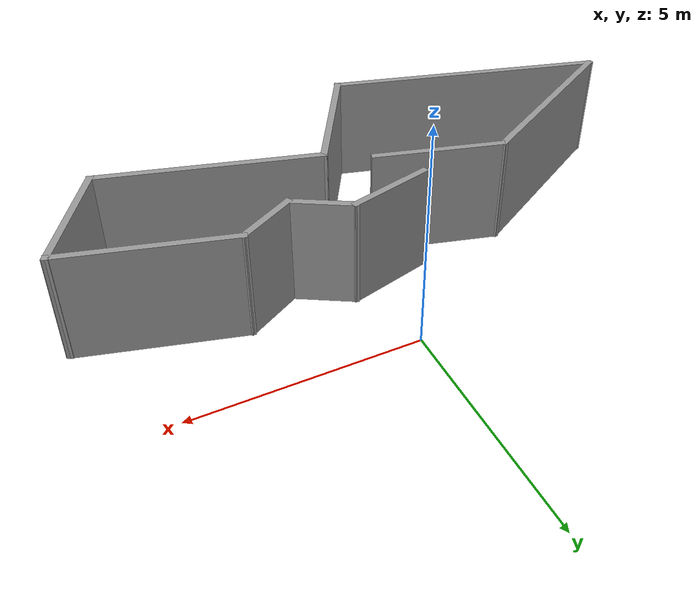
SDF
<?xml version='1.0'?>
<sdf version='1.7'>
  <model name='test01'>
    <pose>-0.372421 -3.20916 0 0 -0 0</pose>
    <link name='Wall_0'>
      <collision name='Wall_0_Collision'>
        <geometry>
          <box>
            <size>3 0.15 2.5</size>
          </box>
        </geometry>
        <pose>0 0 1.25 0 -0 0</pose>
      </collision>
      <visual name='Wall_0_Visual'>
        <pose>0 0 1.25 0 -0 0</pose>
        <geometry>
          <box>
            <size>3 0.15 2.5</size>
          </box>
        </geometry>
        <material>
          <script>
            <uri>file://media/materials/scripts/gazebo.material</uri>
            <name>Gazebo/Grey</name>
          </script>
          <ambient>1 1 1 1</ambient>
        </material>
        <meta>
          <layer>0</layer>
        </meta>
      </visual>
      <pose>-1.47402 0.467977 0 0 -0 2.87979</pose>
    </link>
    <link name='Wall_1'>
      <collision name='Wall_1_Collision'>
        <geometry>
          <box>
            <size>4.75 0.15 2.5</size>
          </box>
        </geometry>
        <pose>0 0 1.25 0 -0 0</pose>
      </collision>
      <visual name='Wall_1_Visual'>
        <pose>0 0 1.25 0 -0 0</pose>
        <geometry>
          <box>
            <size>4.75 0.15 2.5</size>
          </box>
        </geometry>
        <material>
          <script>
            <uri>file://media/materials/scripts/gazebo.material</uri>
            <name>Gazebo/Grey</name>
          </script>
          <ambient>1 1 1 1</ambient>
        </material>
        <meta>
          <layer>0</layer>
        </meta>
      </visual>
      <pose>-4.84233 -0.313206 0 0 -0 -2.61799</pose>
    </link>
    <link name='Wall_2'>
      <collision name='Wall_2_Collision'>
        <geometry>
          <box>
            <size>6.5 0.15 2.5</size>
          </box>
        </geometry>
        <pose>0 0 1.25 0 -0 0</pose>
      </collision>
      <visual name='Wall_2_Visual'>
        <pose>0 0 1.25 0 -0 0</pose>
        <geometry>
          <box>
            <size>6.5 0.15 2.5</size>
          </box>
        </geometry>
        <material>
          <script>
            <uri>file://media/materials/scripts/gazebo.material</uri>
            <name>Gazebo/Grey</name>
          </script>
          <ambient>1 1 1 1</ambient>
        </material>
        <meta>
          <layer>0</layer>
        </meta>
      </visual>
      <pose>-3.76737 -2.28496 0 0 -0 -0.261799</pose>
    </link>
    <link name='Wall_3'>
      <collision name='Wall_3_Collision'>
        <geometry>
          <box>
            <size>3.25 0.15 2.5</size>
          </box>
        </geometry>
        <pose>0 0 1.25 0 -0 0</pose>
      </collision>
      <visual name='Wall_3_Visual'>
        <pose>0 0 1.25 0 -0 0</pose>
        <geometry>
          <box>
            <size>3.25 0.15 2.5</size>
          </box>
        </geometry>
        <material>
          <script>
            <uri>file://media/materials/scripts/gazebo.material</uri>
            <name>Gazebo/Grey</name>
          </script>
          <ambient>1 1 1 1</ambient>
        </material>
        <meta>
          <layer>0</layer>
        </meta>
      </visual>
      <pose>0.074445 -1.76437 0 0 -0 1.0472</pose>
    </link>
    <link name='Wall_4'>
      <collision name='Wall_4_Collision'>
        <geometry>
          <box>
            <size>5 0.15 2.5</size>
          </box>
        </geometry>
        <pose>0 0 1.25 0 -0 0</pose>
      </collision>
      <visual name='Wall_4_Visual'>
        <pose>0 0 1.25 0 -0 0</pose>
        <geometry>
          <box>
            <size>5 0.15 2.5</size>
          </box>
        </geometry>
        <material>
          <script>
            <uri>file://media/materials/scripts/gazebo.material</uri>
            <name>Gazebo/Grey</name>
          </script>
          <ambient>1 1 1 1</ambient>
        </material>
        <meta>
          <layer>0</layer>
        </meta>
      </visual>
      <pose>3.19182 -1.04966 0 0 -0 -0.261799</pose>
    </link>
    <link name='Wall_5'>
      <collision name='Wall_5_Collision'>
        <geometry>
          <box>
            <size>2.75 0.15 2.5</size>
          </box>
        </geometry>
        <pose>0 0 1.25 0 -0 0</pose>
      </collision>
      <visual name='Wall_5_Visual'>
        <pose>0 0 1.25 0 -0 0</pose>
        <geometry>
          <box>
            <size>2.75 0.15 2.5</size>
          </box>
        </geometry>
        <material>
          <script>
            <uri>file://media/materials/scripts/gazebo.material</uri>
            <name>Gazebo/Grey</name>
          </script>
          <ambient>1 1 1 1</ambient>
        </material>
        <meta>
          <layer>0</layer>
        </meta>
      </visual>
      <pose>6.18419 -0.551468 0 0 -0 1.0472</pose>
    </link>
    <link name='Wall_6'>
      <collision name='Wall_6_Collision'>
        <geometry>
          <box>
            <size>3.75 0.15 2.5</size>
          </box>
        </geometry>
        <pose>0 0 1.25 0 -0 0</pose>
      </collision>
      <visual name='Wall_6_Visual'>
        <pose>0 0 1.25 0 -0 0</pose>
        <geometry>
          <box>
            <size>3.75 0.15 2.5</size>
          </box>
        </geometry>
        <material>
          <script>
            <uri>file://media/materials/scripts/gazebo.material</uri>
            <name>Gazebo/Grey</name>
          </script>
          <ambient>1 1 1 1</ambient>
        </material>
        <meta>
          <layer>0</layer>
        </meta>
      </visual>
      <pose>5.09552 1.04024 0 0 -0 2.87979</pose>
    </link>
    <link name='Wall_7'>
      <collision name='Wall_7_Collision'>
        <geometry>
          <box>
            <size>1.5 0.15 2.5</size>
          </box>
        </geometry>
        <pose>0 0 1.25 0 -0 0</pose>
      </collision>
      <visual name='Wall_7_Visual'>
        <pose>0 0 1.25 0 -0 0</pose>
        <geometry>
          <box>
            <size>1.5 0.15 2.5</size>
          </box>
        </geometry>
        <material>
          <script>
            <uri>file://media/materials/scripts/gazebo.material</uri>
            <name>Gazebo/Grey</name>
          </script>
          <ambient>1 1 1 1</ambient>
        </material>
        <meta>
          <layer>0</layer>
        </meta>
      </visual>
      <pose>2.77229 1.16861 0 0 -0 -2.61799</pose>
    </link>
    <link name='Wall_8'>
      <collision name='Wall_8_Collision'>
        <geometry>
          <box>
            <size>1.5 0.15 2.5</size>
          </box>
        </geometry>
        <pose>0 0 1.25 0 -0 0</pose>
      </collision>
      <visual name='Wall_8_Visual'>
        <pose>0 0 1.25 0 -0 0</pose>
        <geometry>
          <box>
            <size>1.5 0.15 2.5</size>
          </box>
        </geometry>
        <material>
          <script>
            <uri>file://media/materials/scripts/gazebo.material</uri>
            <name>Gazebo/Grey</name>
          </script>
          <ambient>1 1 1 1</ambient>
        </material>
        <meta>
          <layer>0</layer>
        </meta>
      </visual>
      <pose>1.60315 1.16861 0 0 -0 2.61799</pose>
    </link>
    <link name='Wall_9'>
      <collision name='Wall_9_Collision'>
        <geometry>
          <box>
            <size>2 0.15 2.5</size>
          </box>
        </geometry>
        <pose>0 0 1.25 0 -0 0</pose>
      </collision>
      <visual name='Wall_9_Visual'>
        <pose>0 0 1.25 0 -0 0</pose>
        <geometry>
          <box>
            <size>2 0.15 2.5</size>
          </box>
        </geometry>
        <material>
          <script>
            <uri>file://media/materials/scripts/gazebo.material</uri>
            <name>Gazebo/Grey</name>
          </script>
          <ambient>1 1 1 1</ambient>
        </material>
        <meta>
          <layer>0</layer>
        </meta>
      </visual>
      <pose>0.125102 1.26671 0 0 -0 -2.87979</pose>
    </link>
    <static>1</static>
  </model>
</sdf>
